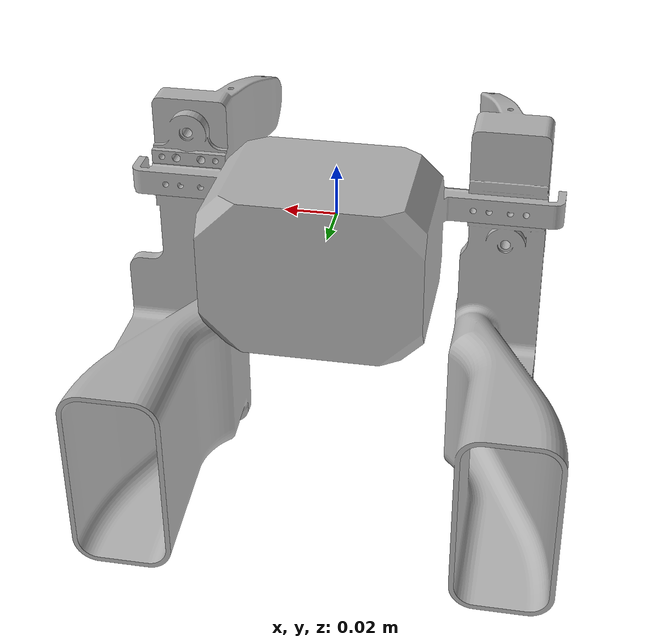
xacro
<?xml version="1.0" ?>
<robot name="openumi_test_export3" xmlns:xacro="http://www.ros.org/wiki/xacro">

<xacro:include filename="$(find openumi_test_export3_description)/urdf/materials.xacro" />
<xacro:include filename="$(find openumi_test_export3_description)/urdf/openumi_test_export3.trans" />
<xacro:include filename="$(find openumi_test_export3_description)/urdf/openumi_test_export3.gazebo" />
<link name="base_link">
  <inertial>
    <origin xyz="2.5437823837415984e-05 0.023944713415808627 4.60128742578899e-07" rpy="0 0 0"/>
    <mass value="0.876668581434838"/>
    <inertia ixx="0.000655" iyy="0.00079" izz="0.00103" ixy="1e-06" iyz="0.0" ixz="-0.0"/>
  </inertial>
  <visual>
    <origin xyz="0 0 0" rpy="0 0 0"/>
    <geometry>
      <mesh filename="package://openumi_test_export3_description/meshes/base_link.stl" scale="0.001 0.001 0.001"/>
    </geometry>
    <material name="silver"/>
  </visual>
  <collision>
    <origin xyz="0 0 0" rpy="0 0 0"/>
    <geometry>
      <mesh filename="package://openumi_test_export3_description/meshes/base_link.stl" scale="0.001 0.001 0.001"/>
    </geometry>
  </collision>
</link>

<link name="right_jaw_1">
  <inertial>
    <origin xyz="-0.011671666802097788 0.004820774216525199 -0.05115973160753859" rpy="0 0 0"/>
    <mass value="0.7920390752045255"/>
    <inertia ixx="0.00261" iyy="0.001793" izz="0.001082" ixy="-0.000134" iyz="0.000771" ixz="0.000138"/>
  </inertial>
  <visual>
    <origin xyz="-0.0775 0.020001 1e-06" rpy="0 0 0"/>
    <geometry>
      <mesh filename="package://openumi_test_export3_description/meshes/right_jaw_1.stl" scale="0.001 0.001 0.001"/>
    </geometry>
    <material name="silver"/>
  </visual>
  <collision>
    <origin xyz="-0.0775 0.020001 1e-06" rpy="0 0 0"/>
    <geometry>
      <mesh filename="package://openumi_test_export3_description/meshes/right_jaw_1.stl" scale="0.001 0.001 0.001"/>
    </geometry>
  </collision>
</link>

<link name="left_jaw_1">
  <inertial>
    <origin xyz="0.014210758546782998 0.004371650851500427 -0.04400310769786983" rpy="0 0 0"/>
    <mass value="0.7420544312057148"/>
    <inertia ixx="0.002596" iyy="0.001774" izz="0.001013" ixy="0.000127" iyz="0.000773" ixz="-7.6e-05"/>
  </inertial>
  <visual>
    <origin xyz="0.0775 0.020001 1e-06" rpy="0 0 0"/>
    <geometry>
      <mesh filename="package://openumi_test_export3_description/meshes/left_jaw_1.stl" scale="0.001 0.001 0.001"/>
    </geometry>
    <material name="silver"/>
  </visual>
  <collision>
    <origin xyz="0.0775 0.020001 1e-06" rpy="0 0 0"/>
    <geometry>
      <mesh filename="package://openumi_test_export3_description/meshes/left_jaw_1.stl" scale="0.001 0.001 0.001"/>
    </geometry>
  </collision>
</link>

<joint name="right_jaw_prismatic" type="prismatic">
  <origin xyz="0.0775 -0.020001 -1e-06" rpy="0 0 0"/>
  <parent link="base_link"/>
  <child link="right_jaw_1"/>
  <axis xyz="-1.0 0.0 0.0"/>
  <limit upper="0.044339" lower="0.0" effort="100" velocity="100"/>
</joint>

<joint name="left_jaw_prismatic" type="prismatic">
  <origin xyz="-0.0775 -0.020001 -1e-06" rpy="0 0 0"/>
  <parent link="base_link"/>
  <child link="left_jaw_1"/>
  <axis xyz="-1.0 0.0 0.0"/>
  <limit upper="0.0" lower="-0.044339" effort="100" velocity="100"/>
</joint>

</robot>

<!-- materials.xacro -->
<robot name="openumi_test_export3" xmlns:xacro="http://www.ros.org/wiki/xacro" >

<material name="silver">
  <color rgba="0.700 0.700 0.700 1.000"/>
</material>

</robot>

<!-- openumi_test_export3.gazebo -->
<robot name="openumi_test_export3" xmlns:xacro="http://www.ros.org/wiki/xacro" >

<xacro:property name="body_color" value="Gazebo/Silver" />

<gazebo>
  <plugin name="control" filename="libgazebo_ros_control.so"/>
</gazebo>
<gazebo reference="base_link">
  <material>${body_color}</material>
  <mu1>0.2</mu1>
  <mu2>0.2</mu2>
  <selfCollide>true</selfCollide>
  <gravity>true</gravity>
</gazebo>

<gazebo reference="right_jaw_1">
  <material>${body_color}</material>
  <mu1>0.2</mu1>
  <mu2>0.2</mu2>
  <selfCollide>true</selfCollide>
</gazebo>

<gazebo reference="left_jaw_1">
  <material>${body_color}</material>
  <mu1>0.2</mu1>
  <mu2>0.2</mu2>
  <selfCollide>true</selfCollide>
</gazebo>

</robot>
